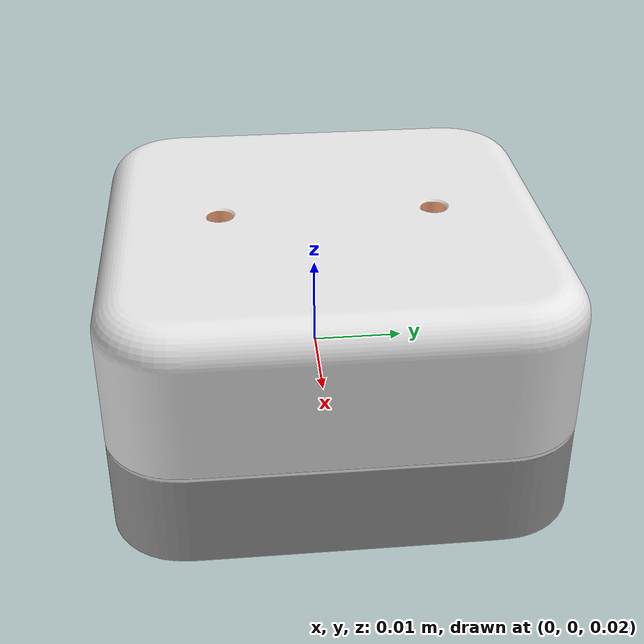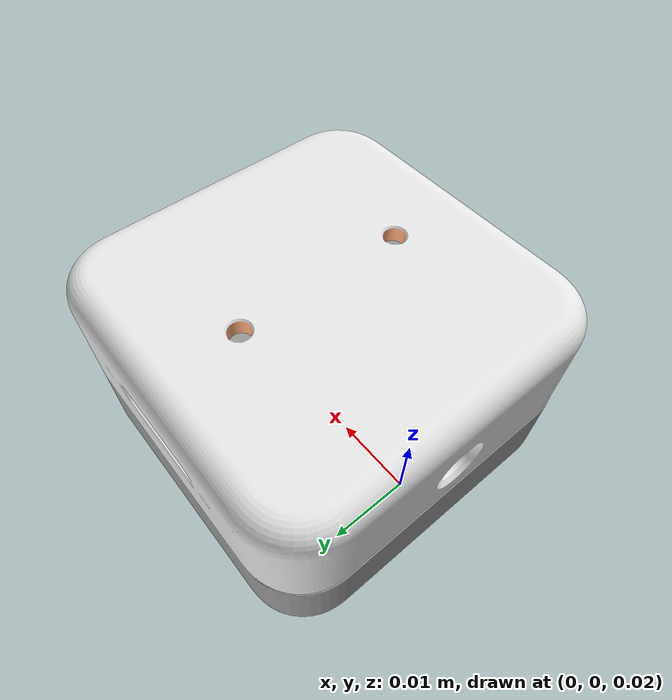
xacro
<?xml version="1.0"?>
<robot name="realsense2_camera" xmlns:xacro="http://ros.org/wiki/xacro">
  <xacro:arg name="use_nominal_extrinsics" default="false"/>
  <xacro:arg name="add_plug" default="false" />
  <xacro:arg name="use_mesh" default="true" />
  <xacro:include filename="$(find realsense2_description)/urdf/_d405.urdf.xacro" />

  <link name="base_link" />
  <xacro:sensor_d405 parent="base_link" use_nominal_extrinsics="$(arg use_nominal_extrinsics)" add_plug="$(arg add_plug)" use_mesh="$(arg use_mesh)">
    <origin xyz="0 0 0" rpy="0 0 0"/>
  </xacro:sensor_d405>
</robot>

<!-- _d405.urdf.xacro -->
<robot name="sensor_d405" xmlns:xacro="http://ros.org/wiki/xacro">
  <!-- Includes -->
  <xacro:include filename="$(find realsense2_description)/urdf/_materials.urdf.xacro" />
  <xacro:include filename="$(find realsense2_description)/urdf/_usb_plug.urdf.xacro" />

  <xacro:macro name="sensor_d405" params="parent *origin name:=camera use_nominal_extrinsics:=false add_plug:=false use_mesh:=true">
    <xacro:property name="M_PI" value="3.1415926535897931" />

    <!-- The following values are approximate, and the camera node
     publishing TF values with actual calibrated camera extrinsic values -->
    <xacro:property name="d405_cam_center_to_cam1_offset" value="-0.009"/>
    <xacro:property name="d405_cam_center_to_cam2_offset" value="0.009"/>

    <!-- The following values model the aluminum peripherial case for the
  	D405 camera, with the camera joint represented by the actual
  	peripherial camera tripod mount -->
    <xacro:property name="d405_cam_width" value="0.042"/>
    <xacro:property name="d405_cam_height" value="0.042"/>
    <xacro:property name="d405_cam_depth" value="0.023"/>
    <xacro:property name="d405_cam_mount_from_center_offset" value="0.0149"/>

    <!-- glass cover is 2.7 mm inwards from front aluminium plate -->
    <!-- see datasheet Revision 013, Fig. 4-8 page 83 -->
    <xacro:property name="d405_glass_to_front" value="2.7e-3"/>

    <!-- see datasheet Revision 013, Fig. 4-8 page 85 -->
    <xacro:property name="d405_zero_depth_to_glass" value="3.7e-3"/>
    <!-- convenience precomputation to avoid clutter-->
    <xacro:property name="d405_mesh_x_offset" value="${d405_cam_mount_from_center_offset-d405_glass_to_front-d405_zero_depth_to_glass}"/>

    <!-- The following offset is relative the the physical D405 camera peripherial
  	camera tripod mount -->
    <xacro:property name="d405_cam_center_px" value="${d405_cam_mount_from_center_offset}"/>
    <xacro:property name="d405_cam_center_py" value="0.0"/>
    <xacro:property name="d405_cam_center_pz" value="${d405_cam_height/2}"/>

    <!-- camera body, with origin at bottom screw mount -->
    <joint name="${name}_joint" type="fixed">
      <xacro:insert_block name="origin" />
      <parent link="${parent}"/>
      <child link="${name}_bottom_screw_frame" />
    </joint>
    <link name="${name}_bottom_screw_frame"/>

    <joint name="${name}_link_joint" type="fixed">
      <origin xyz="${d405_mesh_x_offset} ${d405_cam_center_py} ${d405_cam_center_pz}" rpy="0 0 0"/>
      <parent link="${name}_bottom_screw_frame"/>
      <child link="${name}_link" />
    </joint>

    <link name="${name}_link">
      <visual>
        <xacro:if value="${use_mesh}">
          <!-- the mesh origin is at front plate in between the two camera axes -->
          <origin xyz="${d405_zero_depth_to_glass + d405_glass_to_front} ${-d405_cam_center_py} 0" rpy="${M_PI/2} 0 ${M_PI/2}"/>
          <geometry>
            <mesh filename="package://realsense2_description/meshes/d405.dae" />
          </geometry>
        </xacro:if>
        <xacro:unless value="${use_mesh}">
          <origin xyz="0 ${d405_cam_center_py} 0" rpy="0 0 0"/>
          <geometry>
            <box size="${d405_cam_depth} ${d405_cam_width} ${d405_cam_height}"/>
          </geometry>
          <material name="aluminum"/>
        </xacro:unless>
      </visual>
      <collision>
        <origin xyz="0 ${d405_cam_center_py} 0" rpy="0 0 0"/>
        <geometry>
          <box size="${d405_cam_depth} ${d405_cam_width} ${d405_cam_height}"/>
        </geometry>
      </collision>
      <inertial>
        <!-- The following are not reliable values, and should not be used for modeling -->
        <mass value="0.060" />
        <origin xyz="0 0 0" />
        <inertia ixx="0.003881243" ixy="0.0" ixz="0.0" iyy="0.000498940" iyz="0.0" izz="0.003879257" />
      </inertial>
    </link>

    <!-- Use the nominal extrinsics between camera frames if the calibrated extrinsics aren't being published. e.g. running the device in simulation  -->
    <xacro:if value="${use_nominal_extrinsics}">
      <joint name="${name}_cam1_joint" type="fixed">
        <origin xyz="0 ${d405_cam_center_to_cam1_offset} 0" rpy="0 0 0" />
        <parent link="${name}_link" />
        <child link="${name}_cam1_frame" />
      </joint>
      <link name="${name}_cam1_frame"/>

      <joint name="${name}_cam1_optical_joint" type="fixed">
        <origin xyz="0 0 0" rpy="${-M_PI/2} 0 ${-M_PI/2}" />
        <parent link="${name}_cam1_frame" />
        <child link="${name}_cam1_optical_frame" />
      </joint>
      <link name="${name}_cam1_optical_frame"/>

      <joint name="${name}_cam2_joint" type="fixed">
        <origin xyz="0 ${d405_cam_center_to_cam2_offset} 0" rpy="0 0 0" />
        <parent link="${name}_link" />
        <child link="${name}_cam2_frame" />
      </joint>
      <link name="${name}_cam2_frame"/>

      <joint name="${name}_cam2_optical_joint" type="fixed">
        <origin xyz="0 0 0" rpy="${-M_PI/2} 0 ${-M_PI/2}" />
        <parent link="${name}_cam2_frame" />
        <child link="${name}_cam2_optical_frame" />
      </joint>
      <link name="${name}_cam2_optical_frame"/>
    </xacro:if>

    <xacro:if value="${add_plug}">
      <xacro:usb_plug parent="${name}_link" name="${name}_usb_plug">
        <!-- see datasheet Revision 013, Fig. 4-8 page 88 -->
        <origin xyz="${-d405_mesh_x_offset-0.00835+0.00682} ${d405_cam_width/2} 0" rpy="${M_PI} 0 0"/>
      </xacro:usb_plug>
    </xacro:if>
  </xacro:macro>
</robot>
